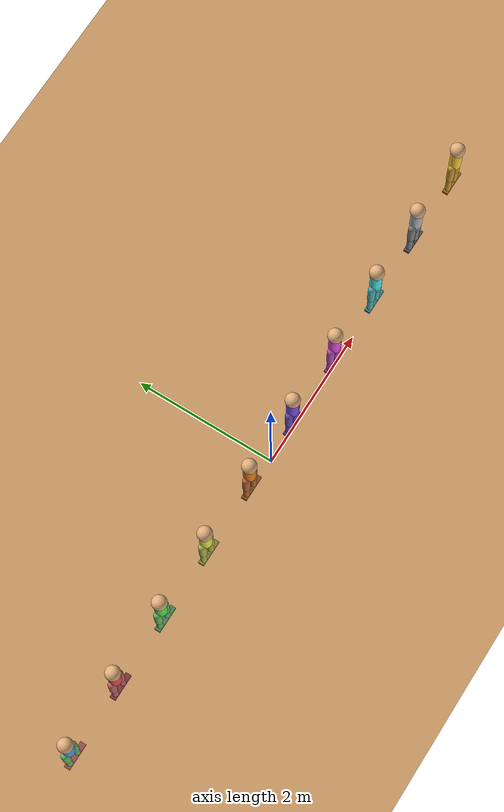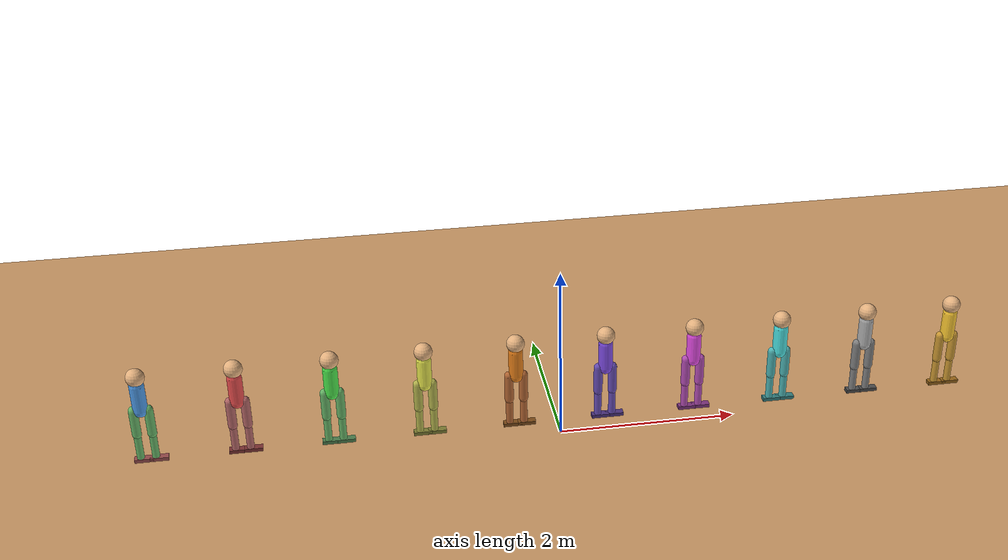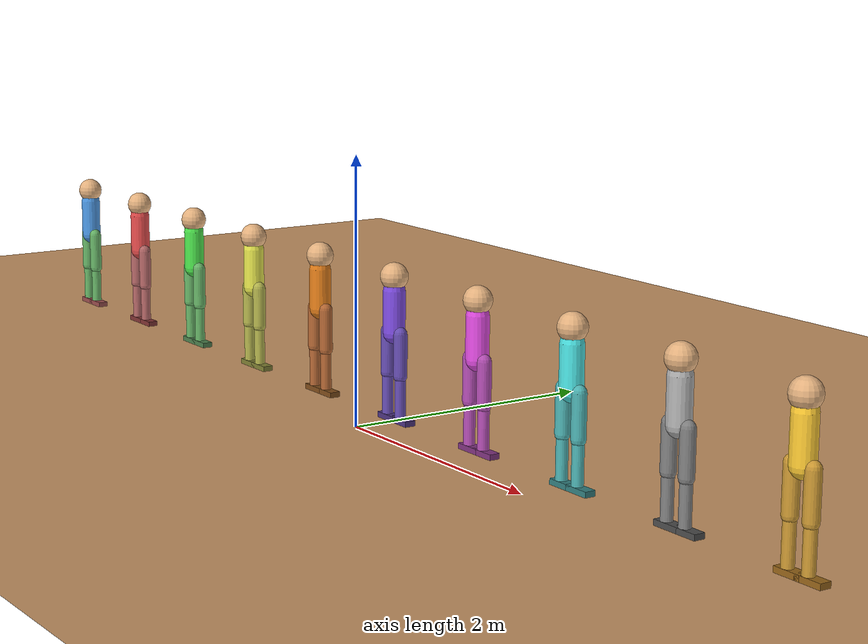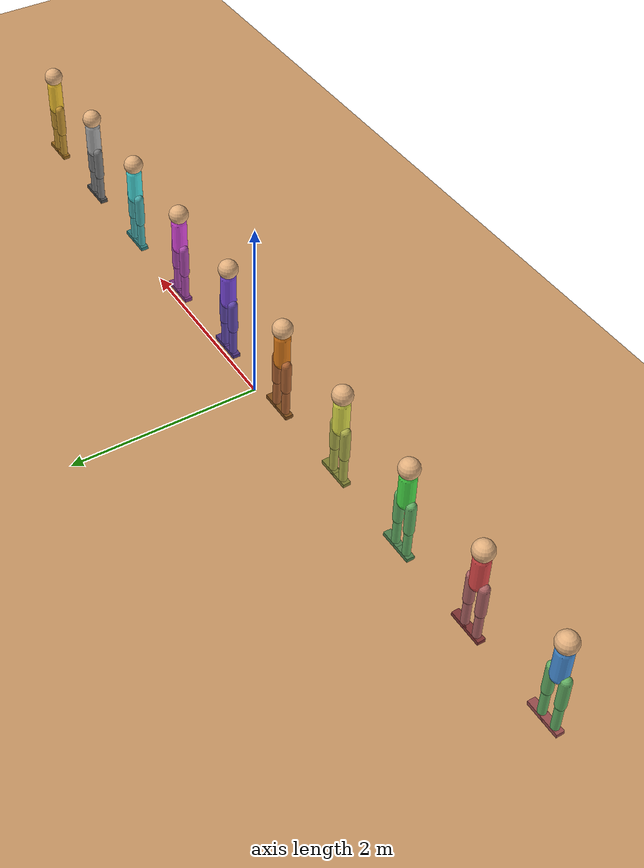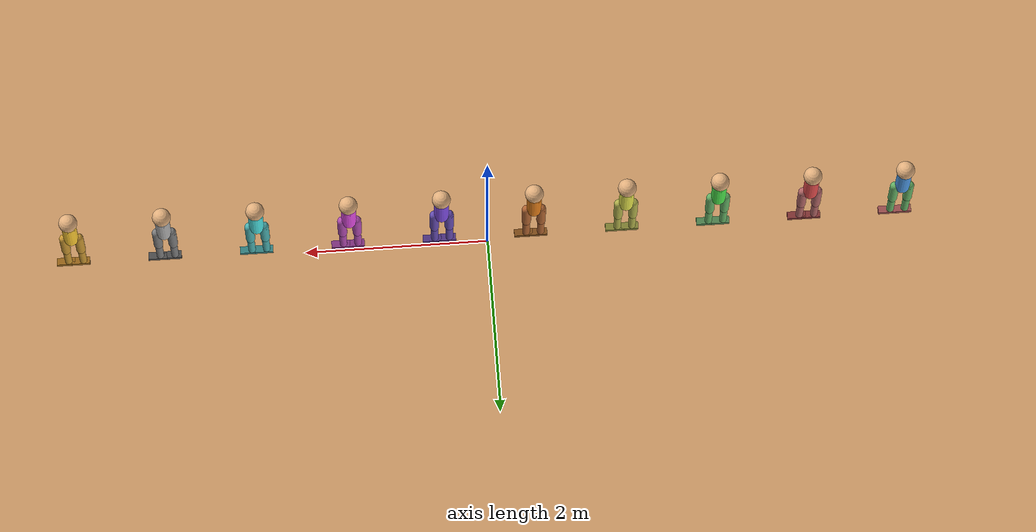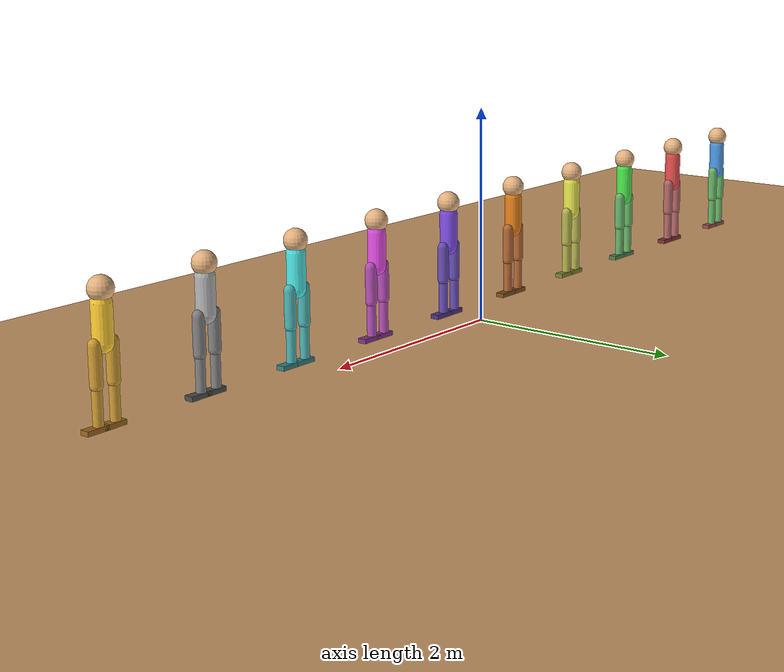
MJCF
<mujoco model="multi_bipedal_walker">
  <option timestep="0.002" gravity="0 0 -9.81" integrator="RK4"/>

  <default>
    <joint armature="0.01" damping="0.5" limited="true"/>
    <geom condim="3" friction="1.0 0.5 0.5" rgba="0.8 0.6 0.4 1"/>
    <motor ctrllimited="true" ctrlrange="-1 1"/>
  </default>

  <visual>
    <global offwidth="1920" offheight="1080"/>
    <rgba haze="0.15 0.25 0.35 1"/>
  </visual>

  <asset>
    <texture type="skybox" builtin="gradient" rgb1="0.3 0.5 0.7" rgb2="0 0 0" width="512" height="3072"/>
    <texture type="2d" name="groundplane" builtin="checker" mark="edge" rgb1="0.2 0.3 0.4" rgb2="0.1 0.2 0.3" markrgb="0.8 0.8 0.8" width="300" height="300"/>
    <material name="groundplane" texture="groundplane" texuniform="true" texrepeat="10 10" reflectance="0.2"/>
  </asset>

  <worldbody>
    <geom name="floor" type="plane" size="100 100 0.1" material="groundplane"/>

    <!-- Robot 0 -->
    <body name="torso_0" pos="-4.5 0 0.8">
      <freejoint name="root_0"/>
      <geom name="torso_geom_0" type="capsule" fromto="0 0 0 0 0 0.3" size="0.08" rgba="0.3 0.6 0.9 1"/>
      <site name="torso_site_0" pos="0 0 0.15"/>
      <geom name="head_0" type="sphere" pos="0 0 0.4" size="0.1" rgba="0.9 0.7 0.5 1"/>
      <body name="left_thigh_0" pos="-0.08 0 0">
        <joint name="left_hip_0" type="hinge" axis="0 1 0" range="-90 90"/>
        <geom name="left_thigh_geom_0" type="capsule" fromto="0 0 0 0 0 -0.3" size="0.05" rgba="0.4 0.7 0.4 1"/>
        <body name="left_shin_0" pos="0 0 -0.3">
          <joint name="left_knee_0" type="hinge" axis="0 1 0" range="-120 0"/>
          <geom name="left_shin_geom_0" type="capsule" fromto="0 0 0 0 0 -0.3" size="0.04" rgba="0.4 0.7 0.4 1"/>
          <body name="left_foot_0" pos="0 0 -0.3">
            <joint name="left_ankle_0" type="hinge" axis="0 1 0" range="-45 45"/>
            <geom name="left_foot_geom_0" type="box" pos="0.03 0 -0.02" size="0.1 0.04 0.02" rgba="0.6 0.3 0.3 1"/>
          </body>
        </body>
      </body>
      <body name="right_thigh_0" pos="0.08 0 0">
        <joint name="right_hip_0" type="hinge" axis="0 1 0" range="-90 90"/>
        <geom name="right_thigh_geom_0" type="capsule" fromto="0 0 0 0 0 -0.3" size="0.05" rgba="0.4 0.7 0.4 1"/>
        <body name="right_shin_0" pos="0 0 -0.3">
          <joint name="right_knee_0" type="hinge" axis="0 1 0" range="-120 0"/>
          <geom name="right_shin_geom_0" type="capsule" fromto="0 0 0 0 0 -0.3" size="0.04" rgba="0.4 0.7 0.4 1"/>
          <body name="right_foot_0" pos="0 0 -0.3">
            <joint name="right_ankle_0" type="hinge" axis="0 1 0" range="-45 45"/>
            <geom name="right_foot_geom_0" type="box" pos="0.03 0 -0.02" size="0.1 0.04 0.02" rgba="0.6 0.3 0.3 1"/>
          </body>
        </body>
      </body>
    </body>

    <!-- Robot 1 -->
    <body name="torso_1" pos="-3.5 0 0.8">
      <freejoint name="root_1"/>
      <geom name="torso_geom_1" type="capsule" fromto="0 0 0 0 0 0.3" size="0.08" rgba="0.9 0.3 0.3 1"/>
      <site name="torso_site_1" pos="0 0 0.15"/>
      <geom name="head_1" type="sphere" pos="0 0 0.4" size="0.1" rgba="0.9 0.7 0.5 1"/>
      <body name="left_thigh_1" pos="-0.08 0 0">
        <joint name="left_hip_1" type="hinge" axis="0 1 0" range="-90 90"/>
        <geom name="left_thigh_geom_1" type="capsule" fromto="0 0 0 0 0 -0.3" size="0.05" rgba="0.7 0.4 0.4 1"/>
        <body name="left_shin_1" pos="0 0 -0.3">
          <joint name="left_knee_1" type="hinge" axis="0 1 0" range="-120 0"/>
          <geom name="left_shin_geom_1" type="capsule" fromto="0 0 0 0 0 -0.3" size="0.04" rgba="0.7 0.4 0.4 1"/>
          <body name="left_foot_1" pos="0 0 -0.3">
            <joint name="left_ankle_1" type="hinge" axis="0 1 0" range="-45 45"/>
            <geom name="left_foot_geom_1" type="box" pos="0.03 0 -0.02" size="0.1 0.04 0.02" rgba="0.5 0.2 0.2 1"/>
          </body>
        </body>
      </body>
      <body name="right_thigh_1" pos="0.08 0 0">
        <joint name="right_hip_1" type="hinge" axis="0 1 0" range="-90 90"/>
        <geom name="right_thigh_geom_1" type="capsule" fromto="0 0 0 0 0 -0.3" size="0.05" rgba="0.7 0.4 0.4 1"/>
        <body name="right_shin_1" pos="0 0 -0.3">
          <joint name="right_knee_1" type="hinge" axis="0 1 0" range="-120 0"/>
          <geom name="right_shin_geom_1" type="capsule" fromto="0 0 0 0 0 -0.3" size="0.04" rgba="0.7 0.4 0.4 1"/>
          <body name="right_foot_1" pos="0 0 -0.3">
            <joint name="right_ankle_1" type="hinge" axis="0 1 0" range="-45 45"/>
            <geom name="right_foot_geom_1" type="box" pos="0.03 0 -0.02" size="0.1 0.04 0.02" rgba="0.5 0.2 0.2 1"/>
          </body>
        </body>
      </body>
    </body>

    <!-- Robot 2 -->
    <body name="torso_2" pos="-2.5 0 0.8">
      <freejoint name="root_2"/>
      <geom name="torso_geom_2" type="capsule" fromto="0 0 0 0 0 0.3" size="0.08" rgba="0.3 0.9 0.3 1"/>
      <site name="torso_site_2" pos="0 0 0.15"/>
      <geom name="head_2" type="sphere" pos="0 0 0.4" size="0.1" rgba="0.9 0.7 0.5 1"/>
      <body name="left_thigh_2" pos="-0.08 0 0">
        <joint name="left_hip_2" type="hinge" axis="0 1 0" range="-90 90"/>
        <geom name="left_thigh_geom_2" type="capsule" fromto="0 0 0 0 0 -0.3" size="0.05" rgba="0.4 0.7 0.4 1"/>
        <body name="left_shin_2" pos="0 0 -0.3">
          <joint name="left_knee_2" type="hinge" axis="0 1 0" range="-120 0"/>
          <geom name="left_shin_geom_2" type="capsule" fromto="0 0 0 0 0 -0.3" size="0.04" rgba="0.4 0.7 0.4 1"/>
          <body name="left_foot_2" pos="0 0 -0.3">
            <joint name="left_ankle_2" type="hinge" axis="0 1 0" range="-45 45"/>
            <geom name="left_foot_geom_2" type="box" pos="0.03 0 -0.02" size="0.1 0.04 0.02" rgba="0.3 0.5 0.3 1"/>
          </body>
        </body>
      </body>
      <body name="right_thigh_2" pos="0.08 0 0">
        <joint name="right_hip_2" type="hinge" axis="0 1 0" range="-90 90"/>
        <geom name="right_thigh_geom_2" type="capsule" fromto="0 0 0 0 0 -0.3" size="0.05" rgba="0.4 0.7 0.4 1"/>
        <body name="right_shin_2" pos="0 0 -0.3">
          <joint name="right_knee_2" type="hinge" axis="0 1 0" range="-120 0"/>
          <geom name="right_shin_geom_2" type="capsule" fromto="0 0 0 0 0 -0.3" size="0.04" rgba="0.4 0.7 0.4 1"/>
          <body name="right_foot_2" pos="0 0 -0.3">
            <joint name="right_ankle_2" type="hinge" axis="0 1 0" range="-45 45"/>
            <geom name="right_foot_geom_2" type="box" pos="0.03 0 -0.02" size="0.1 0.04 0.02" rgba="0.3 0.5 0.3 1"/>
          </body>
        </body>
      </body>
    </body>

    <!-- Robot 3 -->
    <body name="torso_3" pos="-1.5 0 0.8">
      <freejoint name="root_3"/>
      <geom name="torso_geom_3" type="capsule" fromto="0 0 0 0 0 0.3" size="0.08" rgba="0.9 0.9 0.3 1"/>
      <site name="torso_site_3" pos="0 0 0.15"/>
      <geom name="head_3" type="sphere" pos="0 0 0.4" size="0.1" rgba="0.9 0.7 0.5 1"/>
      <body name="left_thigh_3" pos="-0.08 0 0">
        <joint name="left_hip_3" type="hinge" axis="0 1 0" range="-90 90"/>
        <geom name="left_thigh_geom_3" type="capsule" fromto="0 0 0 0 0 -0.3" size="0.05" rgba="0.7 0.7 0.3 1"/>
        <body name="left_shin_3" pos="0 0 -0.3">
          <joint name="left_knee_3" type="hinge" axis="0 1 0" range="-120 0"/>
          <geom name="left_shin_geom_3" type="capsule" fromto="0 0 0 0 0 -0.3" size="0.04" rgba="0.7 0.7 0.3 1"/>
          <body name="left_foot_3" pos="0 0 -0.3">
            <joint name="left_ankle_3" type="hinge" axis="0 1 0" range="-45 45"/>
            <geom name="left_foot_geom_3" type="box" pos="0.03 0 -0.02" size="0.1 0.04 0.02" rgba="0.5 0.5 0.2 1"/>
          </body>
        </body>
      </body>
      <body name="right_thigh_3" pos="0.08 0 0">
        <joint name="right_hip_3" type="hinge" axis="0 1 0" range="-90 90"/>
        <geom name="right_thigh_geom_3" type="capsule" fromto="0 0 0 0 0 -0.3" size="0.05" rgba="0.7 0.7 0.3 1"/>
        <body name="right_shin_3" pos="0 0 -0.3">
          <joint name="right_knee_3" type="hinge" axis="0 1 0" range="-120 0"/>
          <geom name="right_shin_geom_3" type="capsule" fromto="0 0 0 0 0 -0.3" size="0.04" rgba="0.7 0.7 0.3 1"/>
          <body name="right_foot_3" pos="0 0 -0.3">
            <joint name="right_ankle_3" type="hinge" axis="0 1 0" range="-45 45"/>
            <geom name="right_foot_geom_3" type="box" pos="0.03 0 -0.02" size="0.1 0.04 0.02" rgba="0.5 0.5 0.2 1"/>
          </body>
        </body>
      </body>
    </body>

    <!-- Robot 4 -->
    <body name="torso_4" pos="-0.5 0 0.8">
      <freejoint name="root_4"/>
      <geom name="torso_geom_4" type="capsule" fromto="0 0 0 0 0 0.3" size="0.08" rgba="0.9 0.5 0.1 1"/>
      <site name="torso_site_4" pos="0 0 0.15"/>
      <geom name="head_4" type="sphere" pos="0 0 0.4" size="0.1" rgba="0.9 0.7 0.5 1"/>
      <body name="left_thigh_4" pos="-0.08 0 0">
        <joint name="left_hip_4" type="hinge" axis="0 1 0" range="-90 90"/>
        <geom name="left_thigh_geom_4" type="capsule" fromto="0 0 0 0 0 -0.3" size="0.05" rgba="0.7 0.4 0.2 1"/>
        <body name="left_shin_4" pos="0 0 -0.3">
          <joint name="left_knee_4" type="hinge" axis="0 1 0" range="-120 0"/>
          <geom name="left_shin_geom_4" type="capsule" fromto="0 0 0 0 0 -0.3" size="0.04" rgba="0.7 0.4 0.2 1"/>
          <body name="left_foot_4" pos="0 0 -0.3">
            <joint name="left_ankle_4" type="hinge" axis="0 1 0" range="-45 45"/>
            <geom name="left_foot_geom_4" type="box" pos="0.03 0 -0.02" size="0.1 0.04 0.02" rgba="0.5 0.3 0.1 1"/>
          </body>
        </body>
      </body>
      <body name="right_thigh_4" pos="0.08 0 0">
        <joint name="right_hip_4" type="hinge" axis="0 1 0" range="-90 90"/>
        <geom name="right_thigh_geom_4" type="capsule" fromto="0 0 0 0 0 -0.3" size="0.05" rgba="0.7 0.4 0.2 1"/>
        <body name="right_shin_4" pos="0 0 -0.3">
          <joint name="right_knee_4" type="hinge" axis="0 1 0" range="-120 0"/>
          <geom name="right_shin_geom_4" type="capsule" fromto="0 0 0 0 0 -0.3" size="0.04" rgba="0.7 0.4 0.2 1"/>
          <body name="right_foot_4" pos="0 0 -0.3">
            <joint name="right_ankle_4" type="hinge" axis="0 1 0" range="-45 45"/>
            <geom name="right_foot_geom_4" type="box" pos="0.03 0 -0.02" size="0.1 0.04 0.02" rgba="0.5 0.3 0.1 1"/>
          </body>
        </body>
      </body>
    </body>

    <!-- Robot 5 -->
    <body name="torso_5" pos="0.5 0 0.8">
      <freejoint name="root_5"/>
      <geom name="torso_geom_5" type="capsule" fromto="0 0 0 0 0 0.3" size="0.08" rgba="0.5 0.3 0.9 1"/>
      <site name="torso_site_5" pos="0 0 0.15"/>
      <geom name="head_5" type="sphere" pos="0 0 0.4" size="0.1" rgba="0.9 0.7 0.5 1"/>
      <body name="left_thigh_5" pos="-0.08 0 0">
        <joint name="left_hip_5" type="hinge" axis="0 1 0" range="-90 90"/>
        <geom name="left_thigh_geom_5" type="capsule" fromto="0 0 0 0 0 -0.3" size="0.05" rgba="0.4 0.3 0.7 1"/>
        <body name="left_shin_5" pos="0 0 -0.3">
          <joint name="left_knee_5" type="hinge" axis="0 1 0" range="-120 0"/>
          <geom name="left_shin_geom_5" type="capsule" fromto="0 0 0 0 0 -0.3" size="0.04" rgba="0.4 0.3 0.7 1"/>
          <body name="left_foot_5" pos="0 0 -0.3">
            <joint name="left_ankle_5" type="hinge" axis="0 1 0" range="-45 45"/>
            <geom name="left_foot_geom_5" type="box" pos="0.03 0 -0.02" size="0.1 0.04 0.02" rgba="0.3 0.2 0.5 1"/>
          </body>
        </body>
      </body>
      <body name="right_thigh_5" pos="0.08 0 0">
        <joint name="right_hip_5" type="hinge" axis="0 1 0" range="-90 90"/>
        <geom name="right_thigh_geom_5" type="capsule" fromto="0 0 0 0 0 -0.3" size="0.05" rgba="0.4 0.3 0.7 1"/>
        <body name="right_shin_5" pos="0 0 -0.3">
          <joint name="right_knee_5" type="hinge" axis="0 1 0" range="-120 0"/>
          <geom name="right_shin_geom_5" type="capsule" fromto="0 0 0 0 0 -0.3" size="0.04" rgba="0.4 0.3 0.7 1"/>
          <body name="right_foot_5" pos="0 0 -0.3">
            <joint name="right_ankle_5" type="hinge" axis="0 1 0" range="-45 45"/>
            <geom name="right_foot_geom_5" type="box" pos="0.03 0 -0.02" size="0.1 0.04 0.02" rgba="0.3 0.2 0.5 1"/>
          </body>
        </body>
      </body>
    </body>

    <!-- Robot 6 -->
    <body name="torso_6" pos="1.5 0 0.8">
      <freejoint name="root_6"/>
      <geom name="torso_geom_6" type="capsule" fromto="0 0 0 0 0 0.3" size="0.08" rgba="0.9 0.3 0.9 1"/>
      <site name="torso_site_6" pos="0 0 0.15"/>
      <geom name="head_6" type="sphere" pos="0 0 0.4" size="0.1" rgba="0.9 0.7 0.5 1"/>
      <body name="left_thigh_6" pos="-0.08 0 0">
        <joint name="left_hip_6" type="hinge" axis="0 1 0" range="-90 90"/>
        <geom name="left_thigh_geom_6" type="capsule" fromto="0 0 0 0 0 -0.3" size="0.05" rgba="0.7 0.3 0.7 1"/>
        <body name="left_shin_6" pos="0 0 -0.3">
          <joint name="left_knee_6" type="hinge" axis="0 1 0" range="-120 0"/>
          <geom name="left_shin_geom_6" type="capsule" fromto="0 0 0 0 0 -0.3" size="0.04" rgba="0.7 0.3 0.7 1"/>
          <body name="left_foot_6" pos="0 0 -0.3">
            <joint name="left_ankle_6" type="hinge" axis="0 1 0" range="-45 45"/>
            <geom name="left_foot_geom_6" type="box" pos="0.03 0 -0.02" size="0.1 0.04 0.02" rgba="0.5 0.2 0.5 1"/>
          </body>
        </body>
      </body>
      <body name="right_thigh_6" pos="0.08 0 0">
        <joint name="right_hip_6" type="hinge" axis="0 1 0" range="-90 90"/>
        <geom name="right_thigh_geom_6" type="capsule" fromto="0 0 0 0 0 -0.3" size="0.05" rgba="0.7 0.3 0.7 1"/>
        <body name="right_shin_6" pos="0 0 -0.3">
          <joint name="right_knee_6" type="hinge" axis="0 1 0" range="-120 0"/>
          <geom name="right_shin_geom_6" type="capsule" fromto="0 0 0 0 0 -0.3" size="0.04" rgba="0.7 0.3 0.7 1"/>
          <body name="right_foot_6" pos="0 0 -0.3">
            <joint name="right_ankle_6" type="hinge" axis="0 1 0" range="-45 45"/>
            <geom name="right_foot_geom_6" type="box" pos="0.03 0 -0.02" size="0.1 0.04 0.02" rgba="0.5 0.2 0.5 1"/>
          </body>
        </body>
      </body>
    </body>

    <!-- Robot 7 -->
    <body name="torso_7" pos="2.5 0 0.8">
      <freejoint name="root_7"/>
      <geom name="torso_geom_7" type="capsule" fromto="0 0 0 0 0 0.3" size="0.08" rgba="0.3 0.9 0.9 1"/>
      <site name="torso_site_7" pos="0 0 0.15"/>
      <geom name="head_7" type="sphere" pos="0 0 0.4" size="0.1" rgba="0.9 0.7 0.5 1"/>
      <body name="left_thigh_7" pos="-0.08 0 0">
        <joint name="left_hip_7" type="hinge" axis="0 1 0" range="-90 90"/>
        <geom name="left_thigh_geom_7" type="capsule" fromto="0 0 0 0 0 -0.3" size="0.05" rgba="0.3 0.7 0.7 1"/>
        <body name="left_shin_7" pos="0 0 -0.3">
          <joint name="left_knee_7" type="hinge" axis="0 1 0" range="-120 0"/>
          <geom name="left_shin_geom_7" type="capsule" fromto="0 0 0 0 0 -0.3" size="0.04" rgba="0.3 0.7 0.7 1"/>
          <body name="left_foot_7" pos="0 0 -0.3">
            <joint name="left_ankle_7" type="hinge" axis="0 1 0" range="-45 45"/>
            <geom name="left_foot_geom_7" type="box" pos="0.03 0 -0.02" size="0.1 0.04 0.02" rgba="0.2 0.5 0.5 1"/>
          </body>
        </body>
      </body>
      <body name="right_thigh_7" pos="0.08 0 0">
        <joint name="right_hip_7" type="hinge" axis="0 1 0" range="-90 90"/>
        <geom name="right_thigh_geom_7" type="capsule" fromto="0 0 0 0 0 -0.3" size="0.05" rgba="0.3 0.7 0.7 1"/>
        <body name="right_shin_7" pos="0 0 -0.3">
          <joint name="right_knee_7" type="hinge" axis="0 1 0" range="-120 0"/>
          <geom name="right_shin_geom_7" type="capsule" fromto="0 0 0 0 0 -0.3" size="0.04" rgba="0.3 0.7 0.7 1"/>
          <body name="right_foot_7" pos="0 0 -0.3">
            <joint name="right_ankle_7" type="hinge" axis="0 1 0" range="-45 45"/>
            <geom name="right_foot_geom_7" type="box" pos="0.03 0 -0.02" size="0.1 0.04 0.02" rgba="0.2 0.5 0.5 1"/>
          </body>
        </body>
      </body>
    </body>

    <!-- Robot 8 -->
    <body name="torso_8" pos="3.5 0 0.8">
      <freejoint name="root_8"/>
      <geom name="torso_geom_8" type="capsule" fromto="0 0 0 0 0 0.3" size="0.08" rgba="0.7 0.7 0.7 1"/>
      <site name="torso_site_8" pos="0 0 0.15"/>
      <geom name="head_8" type="sphere" pos="0 0 0.4" size="0.1" rgba="0.9 0.7 0.5 1"/>
      <body name="left_thigh_8" pos="-0.08 0 0">
        <joint name="left_hip_8" type="hinge" axis="0 1 0" range="-90 90"/>
        <geom name="left_thigh_geom_8" type="capsule" fromto="0 0 0 0 0 -0.3" size="0.05" rgba="0.5 0.5 0.5 1"/>
        <body name="left_shin_8" pos="0 0 -0.3">
          <joint name="left_knee_8" type="hinge" axis="0 1 0" range="-120 0"/>
          <geom name="left_shin_geom_8" type="capsule" fromto="0 0 0 0 0 -0.3" size="0.04" rgba="0.5 0.5 0.5 1"/>
          <body name="left_foot_8" pos="0 0 -0.3">
            <joint name="left_ankle_8" type="hinge" axis="0 1 0" range="-45 45"/>
            <geom name="left_foot_geom_8" type="box" pos="0.03 0 -0.02" size="0.1 0.04 0.02" rgba="0.3 0.3 0.3 1"/>
          </body>
        </body>
      </body>
      <body name="right_thigh_8" pos="0.08 0 0">
        <joint name="right_hip_8" type="hinge" axis="0 1 0" range="-90 90"/>
        <geom name="right_thigh_geom_8" type="capsule" fromto="0 0 0 0 0 -0.3" size="0.05" rgba="0.5 0.5 0.5 1"/>
        <body name="right_shin_8" pos="0 0 -0.3">
          <joint name="right_knee_8" type="hinge" axis="0 1 0" range="-120 0"/>
          <geom name="right_shin_geom_8" type="capsule" fromto="0 0 0 0 0 -0.3" size="0.04" rgba="0.5 0.5 0.5 1"/>
          <body name="right_foot_8" pos="0 0 -0.3">
            <joint name="right_ankle_8" type="hinge" axis="0 1 0" range="-45 45"/>
            <geom name="right_foot_geom_8" type="box" pos="0.03 0 -0.02" size="0.1 0.04 0.02" rgba="0.3 0.3 0.3 1"/>
          </body>
        </body>
      </body>
    </body>

    <!-- Robot 9 -->
    <body name="torso_9" pos="4.5 0 0.8">
      <freejoint name="root_9"/>
      <geom name="torso_geom_9" type="capsule" fromto="0 0 0 0 0 0.3" size="0.08" rgba="1.0 0.8 0.2 1"/>
      <site name="torso_site_9" pos="0 0 0.15"/>
      <geom name="head_9" type="sphere" pos="0 0 0.4" size="0.1" rgba="0.9 0.7 0.5 1"/>
      <body name="left_thigh_9" pos="-0.08 0 0">
        <joint name="left_hip_9" type="hinge" axis="0 1 0" range="-90 90"/>
        <geom name="left_thigh_geom_9" type="capsule" fromto="0 0 0 0 0 -0.3" size="0.05" rgba="0.8 0.6 0.2 1"/>
        <body name="left_shin_9" pos="0 0 -0.3">
          <joint name="left_knee_9" type="hinge" axis="0 1 0" range="-120 0"/>
          <geom name="left_shin_geom_9" type="capsule" fromto="0 0 0 0 0 -0.3" size="0.04" rgba="0.8 0.6 0.2 1"/>
          <body name="left_foot_9" pos="0 0 -0.3">
            <joint name="left_ankle_9" type="hinge" axis="0 1 0" range="-45 45"/>
            <geom name="left_foot_geom_9" type="box" pos="0.03 0 -0.02" size="0.1 0.04 0.02" rgba="0.6 0.4 0.1 1"/>
          </body>
        </body>
      </body>
      <body name="right_thigh_9" pos="0.08 0 0">
        <joint name="right_hip_9" type="hinge" axis="0 1 0" range="-90 90"/>
        <geom name="right_thigh_geom_9" type="capsule" fromto="0 0 0 0 0 -0.3" size="0.05" rgba="0.8 0.6 0.2 1"/>
        <body name="right_shin_9" pos="0 0 -0.3">
          <joint name="right_knee_9" type="hinge" axis="0 1 0" range="-120 0"/>
          <geom name="right_shin_geom_9" type="capsule" fromto="0 0 0 0 0 -0.3" size="0.04" rgba="0.8 0.6 0.2 1"/>
          <body name="right_foot_9" pos="0 0 -0.3">
            <joint name="right_ankle_9" type="hinge" axis="0 1 0" range="-45 45"/>
            <geom name="right_foot_geom_9" type="box" pos="0.03 0 -0.02" size="0.1 0.04 0.02" rgba="0.6 0.4 0.1 1"/>
          </body>
        </body>
      </body>
    </body>
  </worldbody>

  <actuator>
    <!-- Robot 0 motors -->
    <motor name="left_hip_motor_0" joint="left_hip_0" gear="100"/>
    <motor name="left_knee_motor_0" joint="left_knee_0" gear="100"/>
    <motor name="left_ankle_motor_0" joint="left_ankle_0" gear="50"/>
    <motor name="right_hip_motor_0" joint="right_hip_0" gear="100"/>
    <motor name="right_knee_motor_0" joint="right_knee_0" gear="100"/>
    <motor name="right_ankle_motor_0" joint="right_ankle_0" gear="50"/>
    <!-- Robot 1 motors -->
    <motor name="left_hip_motor_1" joint="left_hip_1" gear="100"/>
    <motor name="left_knee_motor_1" joint="left_knee_1" gear="100"/>
    <motor name="left_ankle_motor_1" joint="left_ankle_1" gear="50"/>
    <motor name="right_hip_motor_1" joint="right_hip_1" gear="100"/>
    <motor name="right_knee_motor_1" joint="right_knee_1" gear="100"/>
    <motor name="right_ankle_motor_1" joint="right_ankle_1" gear="50"/>
    <!-- Robot 2 motors -->
    <motor name="left_hip_motor_2" joint="left_hip_2" gear="100"/>
    <motor name="left_knee_motor_2" joint="left_knee_2" gear="100"/>
    <motor name="left_ankle_motor_2" joint="left_ankle_2" gear="50"/>
    <motor name="right_hip_motor_2" joint="right_hip_2" gear="100"/>
    <motor name="right_knee_motor_2" joint="right_knee_2" gear="100"/>
    <motor name="right_ankle_motor_2" joint="right_ankle_2" gear="50"/>
    <!-- Robot 3 motors -->
    <motor name="left_hip_motor_3" joint="left_hip_3" gear="100"/>
    <motor name="left_knee_motor_3" joint="left_knee_3" gear="100"/>
    <motor name="left_ankle_motor_3" joint="left_ankle_3" gear="50"/>
    <motor name="right_hip_motor_3" joint="right_hip_3" gear="100"/>
    <motor name="right_knee_motor_3" joint="right_knee_3" gear="100"/>
    <motor name="right_ankle_motor_3" joint="right_ankle_3" gear="50"/>
    <!-- Robot 4 motors -->
    <motor name="left_hip_motor_4" joint="left_hip_4" gear="100"/>
    <motor name="left_knee_motor_4" joint="left_knee_4" gear="100"/>
    <motor name="left_ankle_motor_4" joint="left_ankle_4" gear="50"/>
    <motor name="right_hip_motor_4" joint="right_hip_4" gear="100"/>
    <motor name="right_knee_motor_4" joint="right_knee_4" gear="100"/>
    <motor name="right_ankle_motor_4" joint="right_ankle_4" gear="50"/>
    <!-- Robot 5 motors -->
    <motor name="left_hip_motor_5" joint="left_hip_5" gear="100"/>
    <motor name="left_knee_motor_5" joint="left_knee_5" gear="100"/>
    <motor name="left_ankle_motor_5" joint="left_ankle_5" gear="50"/>
    <motor name="right_hip_motor_5" joint="right_hip_5" gear="100"/>
    <motor name="right_knee_motor_5" joint="right_knee_5" gear="100"/>
    <motor name="right_ankle_motor_5" joint="right_ankle_5" gear="50"/>
    <!-- Robot 6 motors -->
    <motor name="left_hip_motor_6" joint="left_hip_6" gear="100"/>
    <motor name="left_knee_motor_6" joint="left_knee_6" gear="100"/>
    <motor name="left_ankle_motor_6" joint="left_ankle_6" gear="50"/>
    <motor name="right_hip_motor_6" joint="right_hip_6" gear="100"/>
    <motor name="right_knee_motor_6" joint="right_knee_6" gear="100"/>
    <motor name="right_ankle_motor_6" joint="right_ankle_6" gear="50"/>
    <!-- Robot 7 motors -->
    <motor name="left_hip_motor_7" joint="left_hip_7" gear="100"/>
    <motor name="left_knee_motor_7" joint="left_knee_7" gear="100"/>
    <motor name="left_ankle_motor_7" joint="left_ankle_7" gear="50"/>
    <motor name="right_hip_motor_7" joint="right_hip_7" gear="100"/>
    <motor name="right_knee_motor_7" joint="right_knee_7" gear="100"/>
    <motor name="right_ankle_motor_7" joint="right_ankle_7" gear="50"/>
    <!-- Robot 8 motors -->
    <motor name="left_hip_motor_8" joint="left_hip_8" gear="100"/>
    <motor name="left_knee_motor_8" joint="left_knee_8" gear="100"/>
    <motor name="left_ankle_motor_8" joint="left_ankle_8" gear="50"/>
    <motor name="right_hip_motor_8" joint="right_hip_8" gear="100"/>
    <motor name="right_knee_motor_8" joint="right_knee_8" gear="100"/>
    <motor name="right_ankle_motor_8" joint="right_ankle_8" gear="50"/>
    <!-- Robot 9 motors -->
    <motor name="left_hip_motor_9" joint="left_hip_9" gear="100"/>
    <motor name="left_knee_motor_9" joint="left_knee_9" gear="100"/>
    <motor name="left_ankle_motor_9" joint="left_ankle_9" gear="50"/>
    <motor name="right_hip_motor_9" joint="right_hip_9" gear="100"/>
    <motor name="right_knee_motor_9" joint="right_knee_9" gear="100"/>
    <motor name="right_ankle_motor_9" joint="right_ankle_9" gear="50"/>
  </actuator>
</mujoco>
